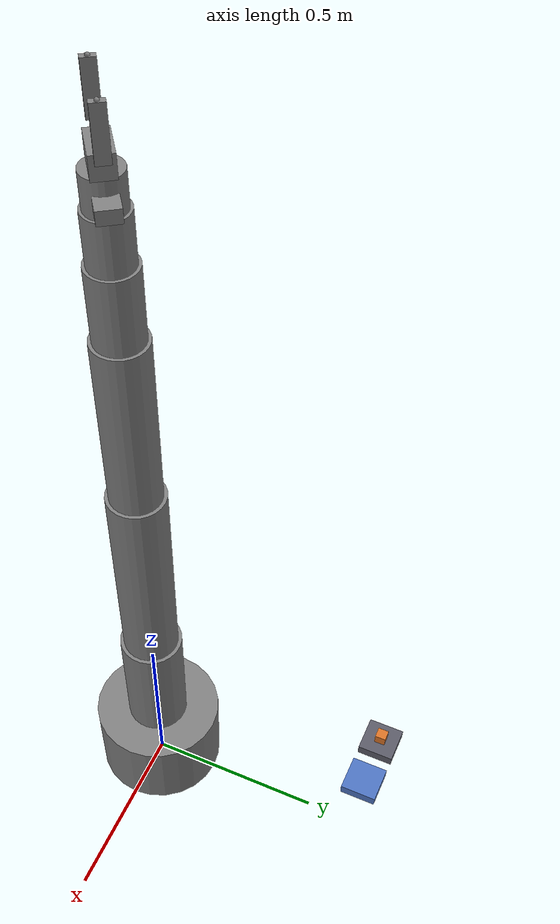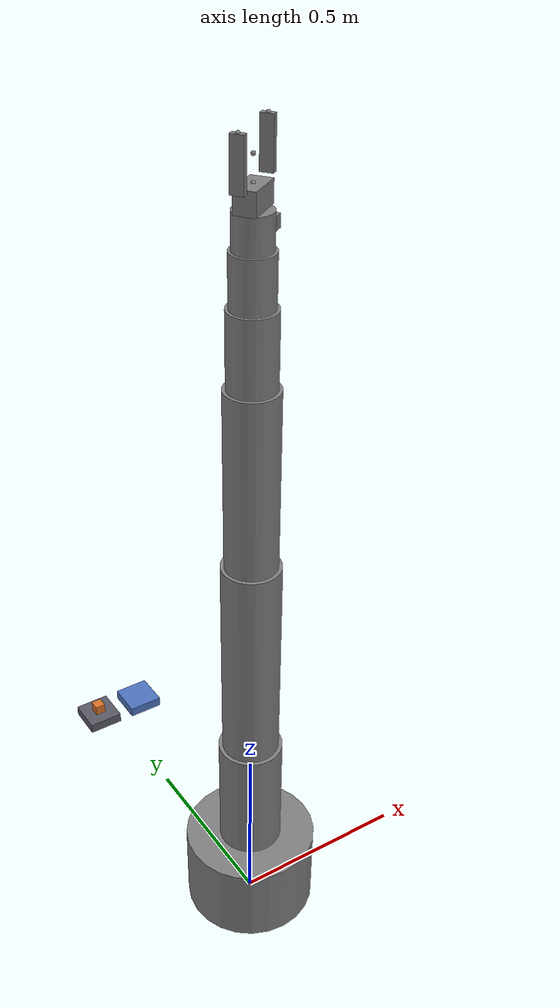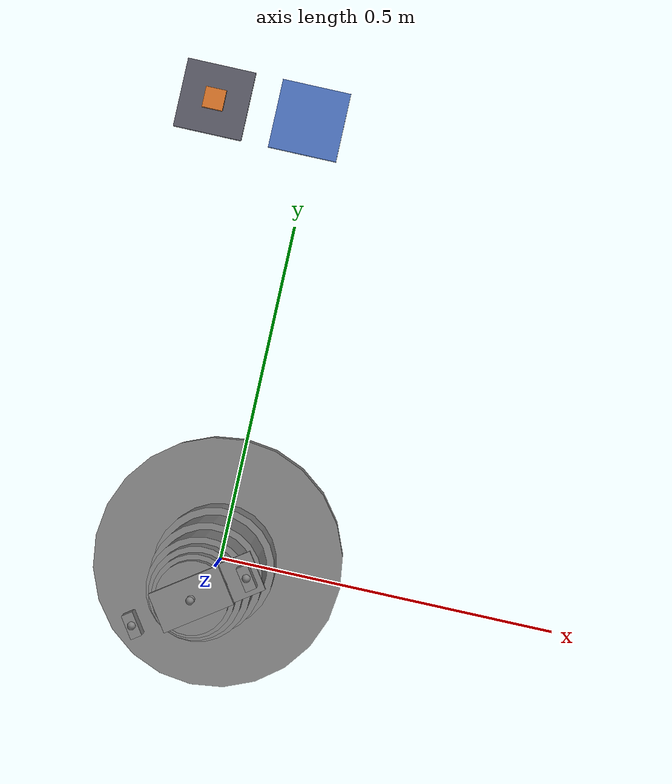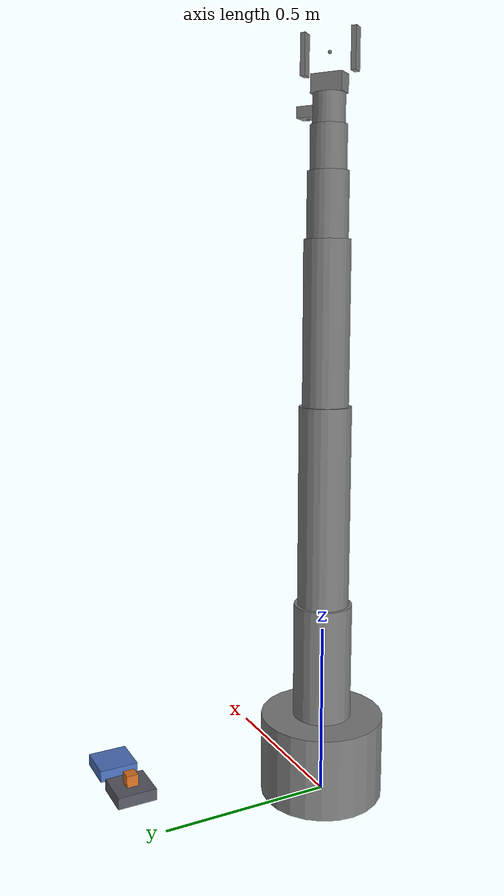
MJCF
<mujoco model="zoo_long_arm">
  <compiler angle="radian" meshdir="C:\Users\hocke\GitHub\rigby-g06\any-robot\assets\general\zoo\zoo_long_arm" texturedir="C:\Users\hocke\GitHub\rigby-g06\any-robot\assets\general\zoo\zoo_long_arm" />

  <worldbody>
    <body name="base">
      <inertial pos="0 0 0.12" quat="0.5 0.5 -0.5 0.5" mass="26" diaginertia="0.4212 0.3354 0.3354" />
      <geom size="0.18 0.12" pos="0 0 0.12" type="cylinder" />
      <site name="robot_base" pos="0 0 0" />
      <body name="link_0" pos="0 0 0.24" quat="0.953717 0 0 0.300706">
        <inertial pos="0 0 0.17" mass="6.94559" diaginertia="0.0794547 0.0794547 0.0250909" />
        <joint name="joint_0" pos="0 0 0" axis="0 0 1" range="-2.85 2.85" actuatorfrcrange="-420 420" />
        <geom size="0.085 0.17" pos="0 0 0.17" type="cylinder" />
        <body name="link_1" pos="0 0 0.34">
          <inertial pos="0 0 0.29" mass="9.17537" diaginertia="0.27005 0.27005 0.0256683" />
          <joint name="joint_1" pos="0 0 0" axis="0 1 0" range="-2.85 2.85" actuatorfrcrange="-420 420" />
          <geom size="0.0748 0.29" pos="0 0 0.29" type="cylinder" />
          <body name="link_2" pos="0 0 0.58">
            <inertial pos="0 0 0.23" mass="5.63532" diaginertia="0.105474 0.105474 0.0122084" />
            <joint name="joint_2" pos="0 0 0" axis="0 1 0" range="-2.85 2.85" actuatorfrcrange="-420 420" />
            <geom size="0.065824 0.23" pos="0 0 0.23" type="cylinder" />
            <body name="link_3" pos="0 0 0.46">
              <inertial pos="0 0 0.09" mass="1.70765" diaginertia="0.00604308 0.00604308 0.00286486" />
              <joint name="joint_3" pos="0 0 0" axis="1 0 0" range="-2.85 2.85" actuatorfrcrange="-420 420" />
              <geom size="0.057925 0.09" pos="0 0 0.09" type="cylinder" />
              <body name="link_4" pos="0 0 0.18">
                <inertial pos="0 0 0.06" mass="0.881603" diaginertia="0.0016306 0.0016306 0.00114536" />
                <joint name="joint_4" pos="0 0 0" axis="0 1 0" range="-2.85 2.85" actuatorfrcrange="-420 420" />
                <geom size="0.050974 0.06" pos="0 0 0.06" type="cylinder" />
                <body name="link_5" pos="0 0 0.12">
                  <inertial pos="0 0 0.04" mass="0.455142" diaginertia="0.0004717 0.0004717 0.00045791" />
                  <joint name="joint_5" pos="0 0 0" axis="0 0 1" range="-2.85 2.85" actuatorfrcrange="-420 420" />
                  <geom size="0.044857 0.04" pos="0 0 0.04" type="cylinder" />
                  <body name="wrist_camera" pos="0.06 0 0.02">
                    <inertial pos="0 0 0.015" quat="0.5 0.5 -0.5 0.5" mass="0.2" diaginertia="8.333e-05 5.667e-05 5.667e-05" />
                    <geom size="0.025 0.025 0.015" pos="0 0 0.015" type="box" />
                    <site name="link_5_gaze" pos="0 0 0" />
                  </body>
                  <body name="palm" pos="0 0 0.08">
                    <inertial pos="0 0 0.025" quat="0.5 0.5 0.5 0.5" mass="0.35" diaginertia="0.00030917 0.00030917 0.00014583" />
                    <geom size="0.045 0.025 0.025" pos="0 0 0.025" type="box" />
                    <site name="palm_grasp_point" pos="0 0 0.105" />
                    <site name="palm_grasp_center" pos="0 0 0.05" />
                    <site name="palm_wrist" pos="0 0 0" />
                    <body name="finger_left" pos="0.073 0 0.05">
                      <inertial pos="0 0 0.055" mass="0.06" diaginertia="6.5e-05 6.148e-05 5.48e-06" />
                      <joint name="grip_left" pos="0 0 0" axis="-1 0 0" type="slide" range="0 0.065" actuatorfrcrange="-110 110" />
                      <geom size="0.007 0.015 0.055" pos="0 0 0.055" type="box" />
                      <site name="palm_tip" pos="0 0 0.11" />
                      <site name="palm_contact_0" pos="0 0 0.11" />
                    </body>
                    <body name="finger_right" pos="-0.073 0 0.05">
                      <inertial pos="0 0 0.055" mass="0.06" diaginertia="6.5e-05 6.148e-05 5.48e-06" />
                      <joint name="grip_right" pos="0 0 0" axis="1 0 0" type="slide" range="0 0.065" actuatorfrcrange="-110 110" />
                      <geom size="0.007 0.015 0.055" pos="0 0 0.055" type="box" />
                      <site name="palm_contact_1" pos="0 0 0.11" />
                    </body>
                  </body>
                </body>
              </body>
            </body>
          </body>
        </body>
      </body>
    </body>
  <body name="env_fixture_bench" pos="-0.150000 0.650000 0.245000"><geom name="env_fixture_bench_geom" type="box" size="0.050000 0.050000 0.015000" rgba="0.3500 0.3500 0.4000 1.0000" solref="0.002 1" solimp="0.95 0.99 0.001" /></body><body name="env_fixture_platform" pos="-0.010000 0.650000 0.245000"><geom name="env_fixture_platform_geom" type="box" size="0.050000 0.050000 0.015000" rgba="0.3000 0.4500 0.7500 1.0000" solref="0.002 1" solimp="0.95 0.99 0.001" /></body><body name="scene_block" pos="-0.150000 0.650000 0.275000"><freejoint name="scene_block_free" /><geom name="scene_block_geom" type="box" size="0.015000 0.015000 0.015000" mass="0.008640" friction="1.400 0.03 0.001" rgba="0.8500 0.4500 0.1500 1.0000" condim="4" solref="0.002 1" solimp="0.95 0.99 0.001" priority="1" /><site name="scene_block_center" pos="0 0 0" size="0.002" /></body></worldbody>

  <actuator>
    <general name="joint_0_motor" joint="joint_0" ctrllimited="true" ctrlrange="-420 420" forcelimited="true" forcerange="-420 420" />
    <general name="joint_1_motor" joint="joint_1" ctrllimited="true" ctrlrange="-420 420" forcelimited="true" forcerange="-420 420" />
    <general name="joint_2_motor" joint="joint_2" ctrllimited="true" ctrlrange="-420 420" forcelimited="true" forcerange="-420 420" />
    <general name="joint_3_motor" joint="joint_3" ctrllimited="true" ctrlrange="-420 420" forcelimited="true" forcerange="-420 420" />
    <general name="joint_4_motor" joint="joint_4" ctrllimited="true" ctrlrange="-420 420" forcelimited="true" forcerange="-420 420" />
    <general name="joint_5_motor" joint="joint_5" ctrllimited="true" ctrlrange="-420 420" forcelimited="true" forcerange="-420 420" />
    <general name="grip_left_motor" joint="grip_left" ctrllimited="true" ctrlrange="-110 110" forcelimited="true" forcerange="-110 110" />
    <general name="grip_right_motor" joint="grip_right" ctrllimited="true" ctrlrange="-110 110" forcelimited="true" forcerange="-110 110" />
  </actuator>
<contact><exclude body1="link_5" body2="wrist_camera" /></contact></mujoco>
